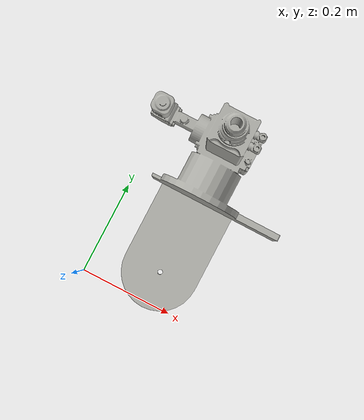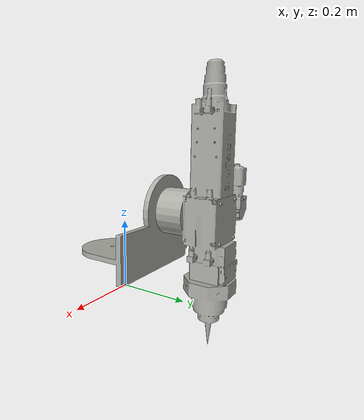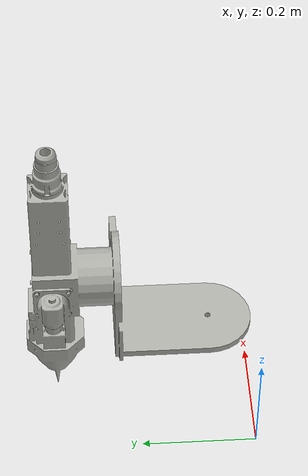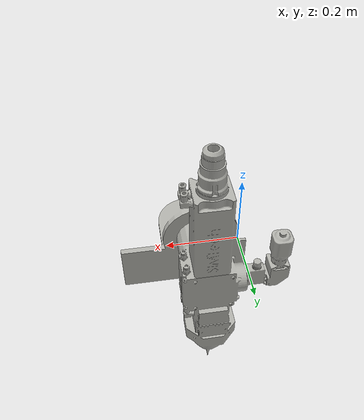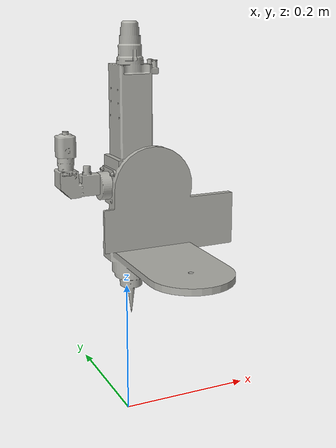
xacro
<?xml version="1.0" ?>
<robot name="wt03_head" xmlns:xacro="http://ros.org/wiki/xacro">
  <link name="head0">
    <visual>
      <geometry>
        <mesh filename="package://scanning_workcell/meshes/head/visual/laserhead.STL" scale = "0.001 0.001 0.001"/>
      </geometry>
      <material name="dark_gray">
        <color rgba="${175/255} ${175/255} ${169/255} 1.0"/>
      </material>
    </visual>
    <collision>
      <geometry>
        <mesh filename="package://scanning_workcell/meshes/head/collision/laserhead.STL" scale = "0.001 0.001 0.001"/>
      </geometry>
      <material name="yellow">
        <color rgba="0 1 1 1" />
      </material>
    </collision>
  </link>
</robot>
